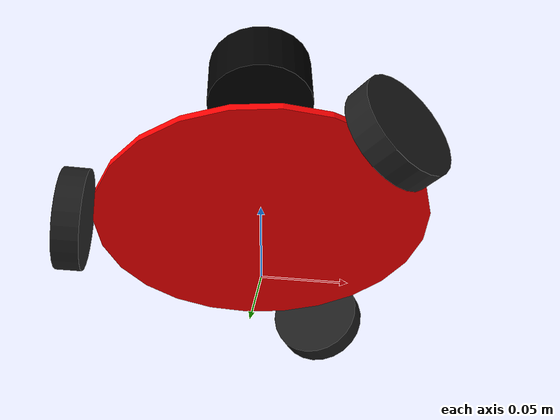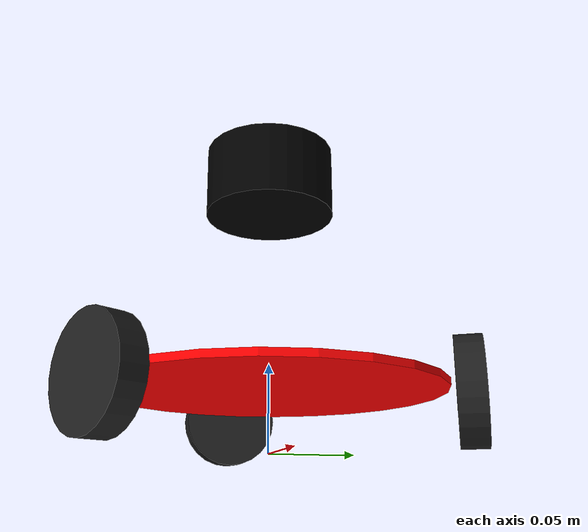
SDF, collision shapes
<?xml version='1.0'?>
<sdf version='1.7'>
  <model name='triton'>
    <link name='lidar'>
      <inertial>
        <pose>0 0 0.161 0 -0 0</pose>
        <inertia>
          <ixx>0.001</ixx>
          <ixy>0</ixy>
          <ixz>0</ixz>
          <iyy>0.001</iyy>
          <iyz>0</iyz>
          <izz>0.001</izz>
        </inertia>
        <mass>0.125</mass>
      </inertial>
      <sensor name='hls_lfcd_lds' type='ray'>
        <always_on>1</always_on>
        <visualize>0</visualize>
        <pose>0 0 0.161 0 -0 0</pose>
        <update_rate>5</update_rate>
        <ray>
          <scan>
            <horizontal>
              <samples>360</samples>
              <resolution>1</resolution>
              <min_angle>0</min_angle>
              <max_angle>6.28</max_angle>
            </horizontal>
            <vertical>
              <samples>1</samples>
              <min_angle>0</min_angle>
              <max_angle>0</max_angle>
            </vertical>
          </scan>
          <range>
            <min>0.2</min>
            <max>10</max>
            <resolution>0.01</resolution>
          </range>
          <noise>
            <type>gaussian</type>
            <mean>0</mean>
            <stddev>0.04</stddev>
          </noise>
        </ray>
        <plugin name='rplidar_a2_m12' filename='libgazebo_ros_laser.so'>
          <topicName>/scan</topicName>
          <frameName>base_scan</frameName>
          <robotNamespace>/</robotNamespace>
        </plugin>
      </sensor>
      <self_collide>0</self_collide>
      <enable_wind>0</enable_wind>
      <kinematic>0</kinematic>
      <pose>0 0 0 0 -0 0</pose>
      <visual name='lidar_sensor_visual'>
        <pose>0 0 0.161 0 -0 0</pose>
        <geometry>
          <cylinder>
            <radius>0.038</radius>
            <length>0.041</length>
          </cylinder>
        </geometry>
        <material>
          <ambient>0 0 0 1</ambient>
          <diffuse>0 0 0 1</diffuse>
          <specular>0 0 0 0</specular>
          <emissive>0 0 0 1</emissive>
          <shader type='pixel'/>
          <script>
            <name>ModelPreview_1::lidar::lidar_sensor_visual_MATERIAL_</name>
            <uri>__default__</uri>
          </script>
        </material>
        <transparency>0</transparency>
        <cast_shadows>1</cast_shadows>
      </visual>
      <collision name='lidar_sensor_collision'>
        <laser_retro>0</laser_retro>
        <max_contacts>10</max_contacts>
        <pose>0 0 0.161 0 -0 0</pose>
        <geometry>
          <cylinder>
            <radius>0.038</radius>
            <length>0.041</length>
          </cylinder>
        </geometry>
        <surface>
          <friction>
            <ode>
              <mu>1</mu>
              <mu2>1</mu2>
              <fdir1>0 0 0</fdir1>
              <slip1>0</slip1>
              <slip2>0</slip2>
            </ode>
            <torsional>
              <coefficient>1</coefficient>
              <patch_radius>0</patch_radius>
              <surface_radius>0</surface_radius>
              <use_patch_radius>1</use_patch_radius>
              <ode>
                <slip>0</slip>
              </ode>
            </torsional>
          </friction>
          <bounce>
            <restitution_coefficient>0</restitution_coefficient>
            <threshold>1e+06</threshold>
          </bounce>
          <contact>
            <collide_without_contact>0</collide_without_contact>
            <collide_without_contact_bitmask>1</collide_without_contact_bitmask>
            <collide_bitmask>1</collide_bitmask>
            <ode>
              <soft_cfm>0</soft_cfm>
              <soft_erp>0.2</soft_erp>
              <kp>1e+13</kp>
              <kd>1</kd>
              <max_vel>0.01</max_vel>
              <min_depth>0</min_depth>
            </ode>
            <bullet>
              <split_impulse>1</split_impulse>
              <split_impulse_penetration_threshold>-0.01</split_impulse_penetration_threshold>
              <soft_cfm>0</soft_cfm>
              <soft_erp>0.2</soft_erp>
              <kp>1e+13</kp>
              <kd>1</kd>
            </bullet>
          </contact>
        </surface>
      </collision>
    </link>
    <link name='link_1'>
      <inertial>
        <mass>1</mass>
        <inertia>
          <ixx>0.145833</ixx>
          <ixy>0</ixy>
          <ixz>0</ixz>
          <iyy>0.145833</iyy>
          <iyz>0</iyz>
          <izz>0.125</izz>
        </inertia>
        <pose>0 0 0 0 -0 0</pose>
      </inertial>
      <pose>-0 -0 0.035 0 0 -1.6126</pose>
      <gravity>1</gravity>
      <self_collide>0</self_collide>
      <kinematic>0</kinematic>
      <enable_wind>0</enable_wind>
      <visual name='visual'>
        <pose>0 0 0 0 -0 0</pose>
        <geometry>
          <mesh>
            <uri>model://triton/meshes/triton.dae</uri>
          </mesh>
        </geometry>
        <material>
          <lighting>1</lighting>
          <shader type='pixel'>
            <normal_map>__default__</normal_map>
          </shader>
          <ambient>0.5 0 0 1</ambient>
          <diffuse>1 0 0 1</diffuse>
          <specular>0.01 0.01 0.01 1</specular>
          <emissive>0 0 0 1</emissive>
          <script>
            <name>ModelPreview_1::link_1::visual_MATERIAL_</name>
            <uri>__default__</uri>
          </script>
        </material>
        <transparency>0</transparency>
        <cast_shadows>1</cast_shadows>
      </visual>
      <collision name='collision'>
        <laser_retro>0</laser_retro>
        <max_contacts>10</max_contacts>
        <pose>0 0 0 0 -0 0</pose>
        <geometry>
          <cylinder>
            <radius>0.1</radius>
            <length>0.004</length>
          </cylinder>
        </geometry>
        <surface>
          <friction>
            <ode>
              <mu>1</mu>
              <mu2>1</mu2>
              <fdir1>0 0 0</fdir1>
              <slip1>0</slip1>
              <slip2>0</slip2>
            </ode>
            <torsional>
              <coefficient>1</coefficient>
              <patch_radius>0</patch_radius>
              <surface_radius>0</surface_radius>
              <use_patch_radius>1</use_patch_radius>
              <ode>
                <slip>0</slip>
              </ode>
            </torsional>
          </friction>
          <bounce>
            <restitution_coefficient>0</restitution_coefficient>
            <threshold>1e+06</threshold>
          </bounce>
          <contact>
            <collide_without_contact>0</collide_without_contact>
            <collide_without_contact_bitmask>1</collide_without_contact_bitmask>
            <collide_bitmask>1</collide_bitmask>
            <ode>
              <soft_cfm>0</soft_cfm>
              <soft_erp>0.2</soft_erp>
              <kp>1e+13</kp>
              <kd>1</kd>
              <max_vel>0.01</max_vel>
              <min_depth>0</min_depth>
            </ode>
            <bullet>
              <split_impulse>1</split_impulse>
              <split_impulse_penetration_threshold>-0.01</split_impulse_penetration_threshold>
              <soft_cfm>0</soft_cfm>
              <soft_erp>0.2</soft_erp>
              <kp>1e+13</kp>
              <kd>1</kd>
            </bullet>
          </contact>
        </surface>
      </collision>
    </link>
    <link name='link_1_0_clone'>
      <inertial>
        <mass>1</mass>
        <inertia>
          <ixx>0.145833</ixx>
          <ixy>0</ixy>
          <ixz>0</ixz>
          <iyy>0.145833</iyy>
          <iyz>0</iyz>
          <izz>0.125</izz>
        </inertia>
        <pose>0 0 0 0 -0 0</pose>
      </inertial>
      <pose>0.055 0.095 0.03 2.0945 1.57 0.00012</pose>
      <gravity>1</gravity>
      <self_collide>0</self_collide>
      <kinematic>0</kinematic>
      <enable_wind>0</enable_wind>
      <visual name='visual_0'>
        <pose>0 0 0 0 -0 0</pose>
        <geometry>
          <cylinder>
            <radius>0.03</radius>
            <length>0.015</length>
          </cylinder>
        </geometry>
        <material>
          <lighting>1</lighting>
          <script>
            <uri>file://media/materials/scripts/gazebo.material</uri>
            <name>Gazebo/Black</name>
          </script>
          <shader type='pixel'>
            <normal_map>__default__</normal_map>
          </shader>
          <ambient>0.3 0.3 0.3 1</ambient>
          <diffuse>0.7 0.7 0.7 1</diffuse>
          <specular>0.01 0.01 0.01 1</specular>
          <emissive>0 0 0 1</emissive>
        </material>
        <transparency>1</transparency>
        <cast_shadows>1</cast_shadows>
      </visual>
      <collision name='collision'>
        <laser_retro>0</laser_retro>
        <max_contacts>10</max_contacts>
        <pose>0 0 0 0 -0 0</pose>
        <geometry>
          <cylinder>
            <radius>0.03</radius>
            <length>0.015</length>
          </cylinder>
        </geometry>
        <surface>
          <friction>
            <ode>
              <mu>1</mu>
              <mu2>1</mu2>
              <fdir1>0 0 0</fdir1>
              <slip1>0</slip1>
              <slip2>0</slip2>
            </ode>
            <torsional>
              <coefficient>1</coefficient>
              <patch_radius>0</patch_radius>
              <surface_radius>0</surface_radius>
              <use_patch_radius>1</use_patch_radius>
              <ode>
                <slip>0</slip>
              </ode>
            </torsional>
          </friction>
          <bounce>
            <restitution_coefficient>0</restitution_coefficient>
            <threshold>1e+06</threshold>
          </bounce>
          <contact>
            <collide_without_contact>0</collide_without_contact>
            <collide_without_contact_bitmask>1</collide_without_contact_bitmask>
            <collide_bitmask>1</collide_bitmask>
            <ode>
              <soft_cfm>0</soft_cfm>
              <soft_erp>0.2</soft_erp>
              <kp>1e+13</kp>
              <kd>1</kd>
              <max_vel>0.01</max_vel>
              <min_depth>0</min_depth>
            </ode>
            <bullet>
              <split_impulse>1</split_impulse>
              <split_impulse_penetration_threshold>-0.01</split_impulse_penetration_threshold>
              <soft_cfm>0</soft_cfm>
              <soft_erp>0.2</soft_erp>
              <kp>1e+13</kp>
              <kd>1</kd>
            </bullet>
          </contact>
        </surface>
      </collision>
    </link>
    <link name='link_1_0_clone_clone'>
      <inertial>
        <mass>1</mass>
        <inertia>
          <ixx>0.145833</ixx>
          <ixy>0</ixy>
          <ixz>0</ixz>
          <iyy>0.145833</iyy>
          <iyz>0</iyz>
          <izz>0.125</izz>
        </inertia>
        <pose>0 0 0 0 -0 0</pose>
      </inertial>
      <pose>0.055 -0.095 0.03 -2.09426 1.57 0.000103</pose>
      <gravity>1</gravity>
      <self_collide>0</self_collide>
      <kinematic>0</kinematic>
      <enable_wind>0</enable_wind>
      <visual name='visual_0'>
        <pose>0 0 0 0 -0 0</pose>
        <geometry>
          <cylinder>
            <radius>0.03</radius>
            <length>0.015</length>
          </cylinder>
        </geometry>
        <material>
          <lighting>1</lighting>
          <script>
            <uri>file://media/materials/scripts/gazebo.material</uri>
            <name>Gazebo/Black</name>
          </script>
          <shader type='pixel'>
            <normal_map>__default__</normal_map>
          </shader>
          <ambient>0.3 0.3 0.3 1</ambient>
          <diffuse>0.7 0.7 0.7 1</diffuse>
          <specular>0.01 0.01 0.01 1</specular>
          <emissive>0 0 0 1</emissive>
        </material>
        <transparency>1</transparency>
        <cast_shadows>1</cast_shadows>
      </visual>
      <collision name='collision'>
        <laser_retro>0</laser_retro>
        <max_contacts>10</max_contacts>
        <pose>0 0 0 0 -0 0</pose>
        <geometry>
          <cylinder>
            <radius>0.03</radius>
            <length>0.015</length>
          </cylinder>
        </geometry>
        <surface>
          <friction>
            <ode>
              <mu>1</mu>
              <mu2>1</mu2>
              <fdir1>0 0 0</fdir1>
              <slip1>0</slip1>
              <slip2>0</slip2>
            </ode>
            <torsional>
              <coefficient>1</coefficient>
              <patch_radius>0</patch_radius>
              <surface_radius>0</surface_radius>
              <use_patch_radius>1</use_patch_radius>
              <ode>
                <slip>0</slip>
              </ode>
            </torsional>
          </friction>
          <bounce>
            <restitution_coefficient>0</restitution_coefficient>
            <threshold>1e+06</threshold>
          </bounce>
          <contact>
            <collide_without_contact>0</collide_without_contact>
            <collide_without_contact_bitmask>1</collide_without_contact_bitmask>
            <collide_bitmask>1</collide_bitmask>
            <ode>
              <soft_cfm>0</soft_cfm>
              <soft_erp>0.2</soft_erp>
              <kp>1e+13</kp>
              <kd>1</kd>
              <max_vel>0.01</max_vel>
              <min_depth>0</min_depth>
            </ode>
            <bullet>
              <split_impulse>1</split_impulse>
              <split_impulse_penetration_threshold>-0.01</split_impulse_penetration_threshold>
              <soft_cfm>0</soft_cfm>
              <soft_erp>0.2</soft_erp>
              <kp>1e+13</kp>
              <kd>1</kd>
            </bullet>
          </contact>
        </surface>
      </collision>
    </link>
    <link name='link_1_0_clone_clone_0'>
      <inertial>
        <mass>1</mass>
        <inertia>
          <ixx>0.145833</ixx>
          <ixy>0</ixy>
          <ixz>0</ixz>
          <iyy>0.145833</iyy>
          <iyz>0</iyz>
          <izz>0.125</izz>
        </inertia>
        <pose>0 0 0 0 -0 0</pose>
      </inertial>
      <pose>-0.11 0 0.03 7.9e-05 1.57 7.3e-05</pose>
      <gravity>1</gravity>
      <self_collide>0</self_collide>
      <kinematic>0</kinematic>
      <enable_wind>0</enable_wind>
      <visual name='visual_0'>
        <pose>0 0 0 0 -0 0</pose>
        <geometry>
          <cylinder>
            <radius>0.03</radius>
            <length>0.015</length>
          </cylinder>
        </geometry>
        <material>
          <lighting>1</lighting>
          <script>
            <uri>file://media/materials/scripts/gazebo.material</uri>
            <name>Gazebo/Black</name>
          </script>
          <shader type='pixel'>
            <normal_map>__default__</normal_map>
          </shader>
          <ambient>0.3 0.3 0.3 1</ambient>
          <diffuse>0.7 0.7 0.7 1</diffuse>
          <specular>0.01 0.01 0.01 1</specular>
          <emissive>0 0 0 1</emissive>
        </material>
        <transparency>1</transparency>
        <cast_shadows>1</cast_shadows>
      </visual>
      <collision name='collision'>
        <laser_retro>0</laser_retro>
        <max_contacts>10</max_contacts>
        <pose>0 0 0 0 -0 0</pose>
        <geometry>
          <cylinder>
            <radius>0.03</radius>
            <length>0.015</length>
          </cylinder>
        </geometry>
        <surface>
          <friction>
            <ode>
              <mu>1</mu>
              <mu2>1</mu2>
              <fdir1>0 0 0</fdir1>
              <slip1>0</slip1>
              <slip2>0</slip2>
            </ode>
            <torsional>
              <coefficient>1</coefficient>
              <patch_radius>0</patch_radius>
              <surface_radius>0</surface_radius>
              <use_patch_radius>1</use_patch_radius>
              <ode>
                <slip>0</slip>
              </ode>
            </torsional>
          </friction>
          <bounce>
            <restitution_coefficient>0</restitution_coefficient>
            <threshold>1e+06</threshold>
          </bounce>
          <contact>
            <collide_without_contact>0</collide_without_contact>
            <collide_without_contact_bitmask>1</collide_without_contact_bitmask>
            <collide_bitmask>1</collide_bitmask>
            <ode>
              <soft_cfm>0</soft_cfm>
              <soft_erp>0.2</soft_erp>
              <kp>1e+13</kp>
              <kd>1</kd>
              <max_vel>0.01</max_vel>
              <min_depth>0</min_depth>
            </ode>
            <bullet>
              <split_impulse>1</split_impulse>
              <split_impulse_penetration_threshold>-0.01</split_impulse_penetration_threshold>
              <soft_cfm>0</soft_cfm>
              <soft_erp>0.2</soft_erp>
              <kp>1e+13</kp>
              <kd>1</kd>
            </bullet>
          </contact>
        </surface>
      </collision>
    </link>
    <joint name='link_1_JOINT_0' type='fixed'>
      <parent>link_1</parent>
      <child>lidar</child>
      <pose>0 0 0 0 -0 0</pose>
      <physics>
        <ode>
          <limit>
            <cfm>0</cfm>
            <erp>0.2</erp>
          </limit>
          <suspension>
            <cfm>0</cfm>
            <erp>0.2</erp>
          </suspension>
        </ode>
      </physics>
    </joint>
    <joint name='link_1_JOINT_1' type='revolute'>
      <parent>link_1</parent>
      <child>link_1_0_clone_clone_0</child>
      <pose>0 0 0 0 -0 0</pose>
      <axis>
        <xyz>0 0 1</xyz>
        <limit>
          <lower>-1.79769e+308</lower>
          <upper>1.79769e+308</upper>
          <effort>-1</effort>
          <velocity>-1</velocity>
        </limit>
        <dynamics>
          <spring_reference>0</spring_reference>
          <spring_stiffness>0</spring_stiffness>
          <damping>0</damping>
          <friction>0</friction>
        </dynamics>
      </axis>
      <physics>
        <ode>
          <limit>
            <cfm>0</cfm>
            <erp>0.2</erp>
          </limit>
          <suspension>
            <cfm>0</cfm>
            <erp>0.2</erp>
          </suspension>
        </ode>
      </physics>
    </joint>
    <joint name='link_1_JOINT_2' type='revolute'>
      <parent>link_1</parent>
      <child>link_1_0_clone</child>
      <pose>0 0 0 0 -0 0</pose>
      <axis>
        <xyz>0 0 1</xyz>
        <limit>
          <lower>-1.79769e+308</lower>
          <upper>1.79769e+308</upper>
          <effort>-1</effort>
          <velocity>-1</velocity>
        </limit>
        <dynamics>
          <spring_reference>0</spring_reference>
          <spring_stiffness>0</spring_stiffness>
          <damping>0</damping>
          <friction>0</friction>
        </dynamics>
      </axis>
      <physics>
        <ode>
          <limit>
            <cfm>0</cfm>
            <erp>0.2</erp>
          </limit>
          <suspension>
            <cfm>0</cfm>
            <erp>0.2</erp>
          </suspension>
        </ode>
      </physics>
    </joint>
    <joint name='link_1_JOINT_3' type='revolute'>
      <parent>link_1</parent>
      <child>link_1_0_clone_clone</child>
      <pose>0 0 0 0 -0 0</pose>
      <axis>
        <xyz>0 0 1</xyz>
        <limit>
          <lower>-1.79769e+308</lower>
          <upper>1.79769e+308</upper>
          <effort>-1</effort>
          <velocity>-1</velocity>
        </limit>
        <dynamics>
          <spring_reference>0</spring_reference>
          <spring_stiffness>0</spring_stiffness>
          <damping>0</damping>
          <friction>0</friction>
        </dynamics>
      </axis>
      <physics>
        <ode>
          <limit>
            <cfm>0</cfm>
            <erp>0.2</erp>
          </limit>
          <suspension>
            <cfm>0</cfm>
            <erp>0.2</erp>
          </suspension>
        </ode>
      </physics>
    </joint>
    <static>0</static>
    <allow_auto_disable>1</allow_auto_disable>
    <plugin name='model_push' filename='libmodel_push.so'>
      <robotNamespace>/</robotNamespace>
    </plugin>

        <!-- RealSense Camera Link -->
    <link name='realsense_camera_link'>
      <pose>0.1 0 0.25 0 0 0</pose> <!-- Adjust as necessary -->
      <inertial>
        <mass>0.2</mass>
        <inertia>
          <ixx>0.001</ixx>
          <iyy>0.001</iyy>
          <izz>0.001</izz>
          <ixy>0</ixy>
          <ixz>0</ixz>
          <iyz>0</iyz>
        </inertia>
      </inertial>

      <!-- RGB Camera Sensor -->
      <sensor name="realsense_rgb" type="camera">
        <pose>0 0 0 0 0 0</pose>
        <always_on>true</always_on>
        <update_rate>30</update_rate>
        <camera>
          <horizontal_fov>1.047</horizontal_fov> <!-- ~60 deg in radians -->
          <image>
            <width>640</width>
            <height>480</height>
            <format>R8G8B8</format>
          </image>
          <clip>
            <near>0.1</near>
            <far>10</far>
          </clip>
        </camera>
        <plugin name="realsense_rgb_plugin" filename="libgazebo_ros_camera.so">
          <robotNamespace>/triton</robotNamespace>
          <cameraName>realsense_rgb</cameraName>
          <frameName>camera_link</frameName>
          <imageTopicName>/camera/color/image_raw</imageTopicName>
          <cameraInfoTopicName>/camera/color/camera_info</cameraInfoTopicName>
        </plugin>
      </sensor>

      <!-- Optionally, you can add a depth sensor here -->
    </link>

    <!-- Fixed joint attaching RealSense camera to link_1 -->
    <joint name='realsense_joint' type='fixed'>
      <parent>link_1</parent>
      <child>realsense_camera_link</child>
      <pose>0 0 0 0 0 0</pose>
    </joint>
  </model>
</sdf>
